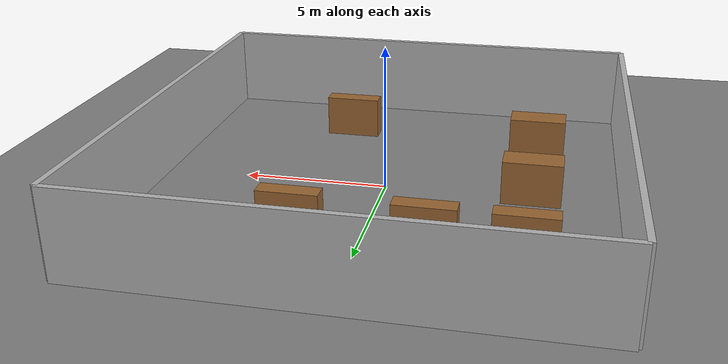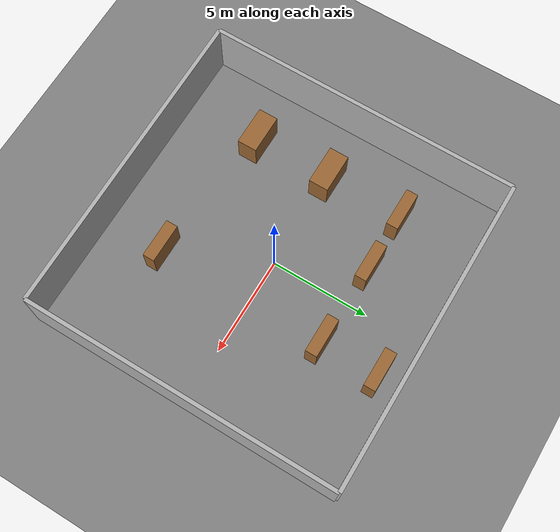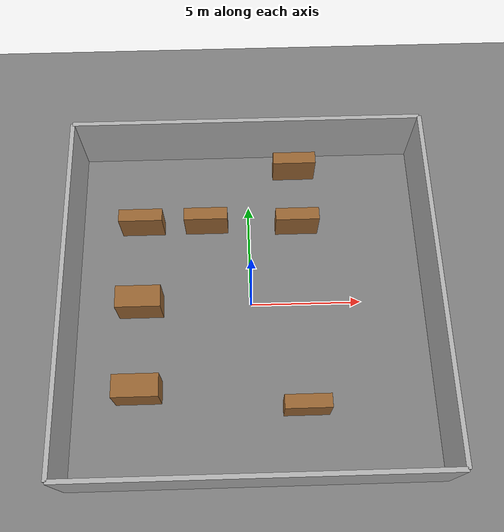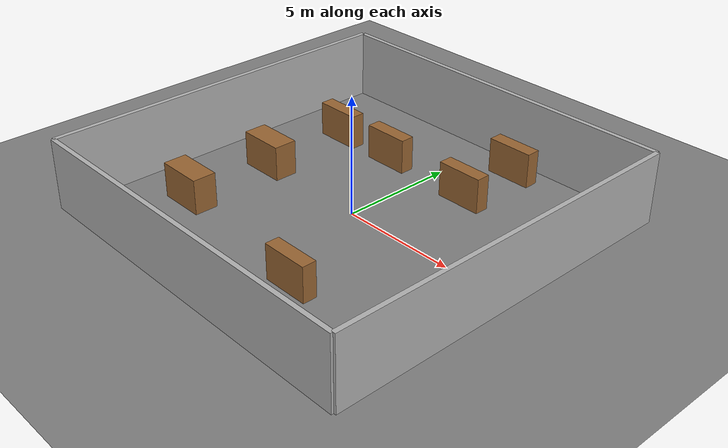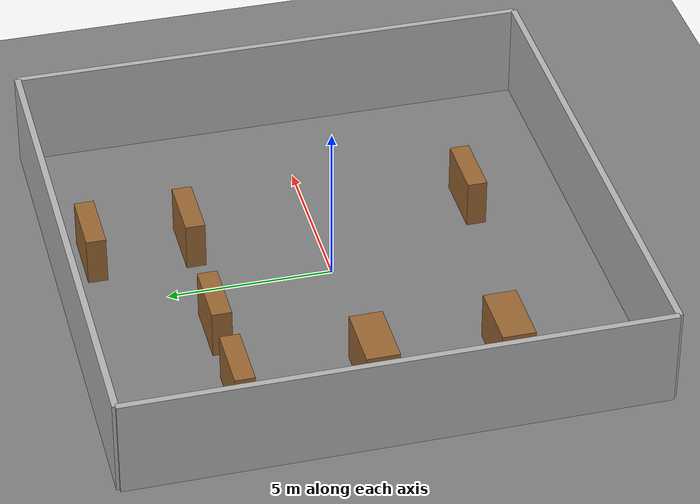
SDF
<?xml version="1.0" ?>
<sdf version="1.8">
  <world name="mapping_warehouse">

    <!-- Physics -->
    <physics name="1ms" type="ignored">
      <max_step_size>0.001</max_step_size>
      <real_time_factor>1.0</real_time_factor>
    </physics>

    <!-- Plugins -->
    <plugin filename="gz-sim-physics-system" name="gz::sim::systems::Physics"/>
    <plugin filename="gz-sim-user-commands-system" name="gz::sim::systems::UserCommands"/>
    <plugin filename="gz-sim-scene-broadcaster-system" name="gz::sim::systems::SceneBroadcaster"/>
    <plugin filename="gz-sim-sensors-system" name="gz::sim::systems::Sensors">
      <render_engine>ogre2</render_engine>
    </plugin>
    <plugin filename="gz-sim-imu-system" name="gz::sim::systems::Imu"/>
    <plugin filename="gz-sim-contact-system" name="gz::sim::systems::Contact"/>

    <!-- Lighting -->
    <light type="directional" name="sun">
      <cast_shadows>true</cast_shadows>
      <pose>0 0 10 0 0 0</pose>
      <diffuse>0.8 0.8 0.8 1</diffuse>
      <specular>0.2 0.2 0.2 1</specular>
      <attenuation>
        <range>1000</range>
        <constant>0.9</constant>
        <linear>0.01</linear>
        <quadratic>0.001</quadratic>
      </attenuation>
      <direction>-0.5 0.1 -0.9</direction>
    </light>

    <!-- Ground Plane -->
    <model name="ground_plane">
      <static>true</static>
      <link name="link">
        <collision name="collision">
          <geometry>
            <plane>
              <normal>0 0 1</normal>
              <size>20 20</size>
            </plane>
          </geometry>
        </collision>
        <visual name="visual">
          <geometry>
            <plane>
              <normal>0 0 1</normal>
              <size>20 20</size>
            </plane>
          </geometry>
          <material>
            <ambient>0.3 0.3 0.3 1</ambient>
            <diffuse>0.5 0.5 0.5 1</diffuse>
          </material>
        </visual>
      </link>
    </model>

    <!-- Warehouse Walls -->
    <!-- North Wall -->
    <model name="wall_north">
      <static>true</static>
      <pose>0 8 1.5 0 0 0</pose>
      <link name="link">
        <collision name="collision">
          <geometry><box><size>16 0.2 3</size></box></geometry>
        </collision>
        <visual name="visual">
          <geometry><box><size>16 0.2 3</size></box></geometry>
          <material><ambient>0.6 0.6 0.6 1</ambient><diffuse>0.7 0.7 0.7 1</diffuse></material>
        </visual>
      </link>
    </model>

    <!-- South Wall -->
    <model name="wall_south">
      <static>true</static>
      <pose>0 -8 1.5 0 0 0</pose>
      <link name="link">
        <collision name="collision">
          <geometry><box><size>16 0.2 3</size></box></geometry>
        </collision>
        <visual name="visual">
          <geometry><box><size>16 0.2 3</size></box></geometry>
          <material><ambient>0.6 0.6 0.6 1</ambient><diffuse>0.7 0.7 0.7 1</diffuse></material>
        </visual>
      </link>
    </model>

    <!-- East Wall -->
    <model name="wall_east">
      <static>true</static>
      <pose>8 0 1.5 0 0 0</pose>
      <link name="link">
        <collision name="collision">
          <geometry><box><size>0.2 16 3</size></box></geometry>
        </collision>
        <visual name="visual">
          <geometry><box><size>0.2 16 3</size></box></geometry>
          <material><ambient>0.6 0.6 0.6 1</ambient><diffuse>0.7 0.7 0.7 1</diffuse></material>
        </visual>
      </link>
    </model>

    <!-- West Wall -->
    <model name="wall_west">
      <static>true</static>
      <pose>-8 0 1.5 0 0 0</pose>
      <link name="link">
        <collision name="collision">
          <geometry><box><size>0.2 16 3</size></box></geometry>
        </collision>
        <visual name="visual">
          <geometry><box><size>0.2 16 3</size></box></geometry>
          <material><ambient>0.6 0.6 0.6 1</ambient><diffuse>0.7 0.7 0.7 1</diffuse></material>
        </visual>
      </link>
    </model>

    <!-- Shelf Row 1 -->
    <model name="shelf_1a">
      <static>true</static>
      <pose>-5 4 0.75 0 0 0</pose>
      <link name="link">
        <collision name="collision">
          <geometry><box><size>2 0.6 1.5</size></box></geometry>
        </collision>
        <visual name="visual">
          <geometry><box><size>2 0.6 1.5</size></box></geometry>
          <material><ambient>0.4 0.3 0.2 1</ambient><diffuse>0.6 0.4 0.2 1</diffuse></material>
        </visual>
      </link>
    </model>

    <model name="shelf_1c">
      <static>true</static>
      <pose>-5 0 0.75 0 0 0</pose>
      <link name="link">
        <collision name="collision">
          <geometry><box><size>2 0.6 1.5</size></box></geometry>
        </collision>
        <visual name="visual">
          <geometry><box><size>2 1 1.5</size></box></geometry>
          <material><ambient>0.4 0.3 0.2 1</ambient><diffuse>0.6 0.4 0.2 1</diffuse></material>
        </visual>
      </link>
    </model>

    <model name="shelf_1d">
      <static>true</static>
      <pose>-5 -4 0.75 0 0 0</pose>
      <link name="link">
        <collision name="collision">
          <geometry><box><size>2 0.6 1.5</size></box></geometry>
        </collision>
        <visual name="visual">
          <geometry><box><size>2 1 1.5</size></box></geometry>
          <material><ambient>0.4 0.3 0.2 1</ambient><diffuse>0.6 0.4 0.2 1</diffuse></material>
        </visual>
      </link>
    </model>

    <model name="shelf_1b">
      <static>true</static>
      <pose>-2 4 0.75 0 0 0</pose>
      <link name="link">
        <collision name="collision">
          <geometry><box><size>2 0.6 1.5</size></box></geometry>
        </collision>
        <visual name="visual">
          <geometry><box><size>2 0.6 1.5</size></box></geometry>
          <material><ambient>0.4 0.3 0.2 1</ambient><diffuse>0.6 0.4 0.2 1</diffuse></material>
        </visual>
      </link>
    </model>

    <model name="shelf_3d">
      <static>true</static>
      <pose>2.24 -4.87 0.75 0 0 0</pose>
      <link name="link">
        <collision name="collision">
          <geometry><box><size>2 0.6 1.5</size></box></geometry>
        </collision>
        <visual name="visual">
          <geometry><box><size>2 0.6 1.5</size></box></geometry>
          <material><ambient>0.4 0.3 0.2 1</ambient><diffuse>0.6 0.4 0.2 1</diffuse></material>
        </visual>
      </link>
    </model>

    <model name="shelf_3e">
      <static>true</static>
      <pose>2.24 3.87 0.75 0 0 0</pose>
      <link name="link">
        <collision name="collision">
          <geometry><box><size>2 0.6 1.5</size></box></geometry>
        </collision>
        <visual name="visual">
          <geometry><box><size>2 0.6 1.5</size></box></geometry>
          <material><ambient>0.4 0.3 0.2 1</ambient><diffuse>0.6 0.4 0.2 1</diffuse></material>
        </visual>
      </link>
    </model>

    <model name="shelf_3f">
      <static>true</static>
      <pose>2.24 6.87 0.75 0 0 0</pose>
      <link name="link">
        <collision name="collision">
          <geometry><box><size>2 0.6 1.5</size></box></geometry>
        </collision>
        <visual name="visual">
          <geometry><box><size>2 0.6 1.5</size></box></geometry>
          <material><ambient>0.4 0.3 0.2 1</ambient><diffuse>0.6 0.4 0.2 1</diffuse></material>
        </visual>
      </link>
    </model>
  </world>
</sdf>
